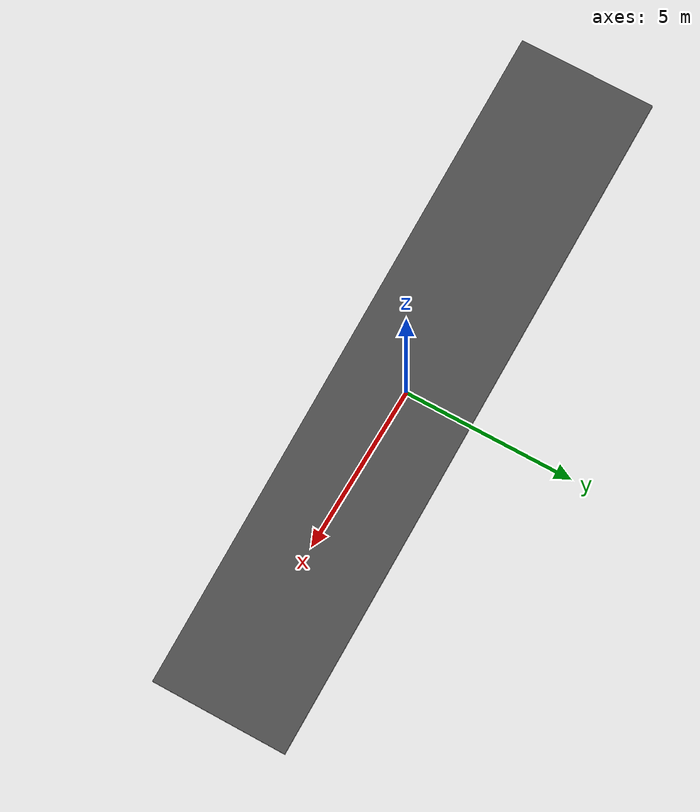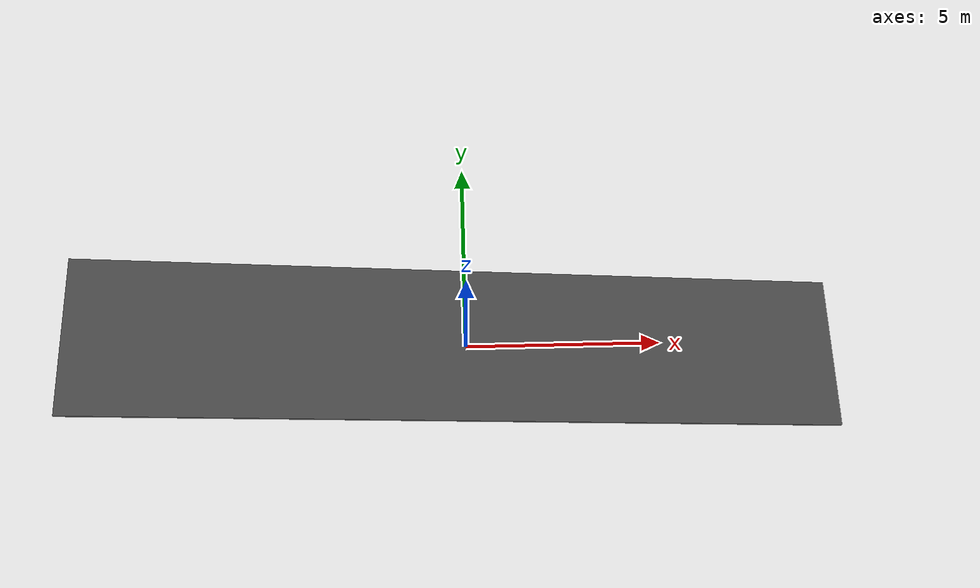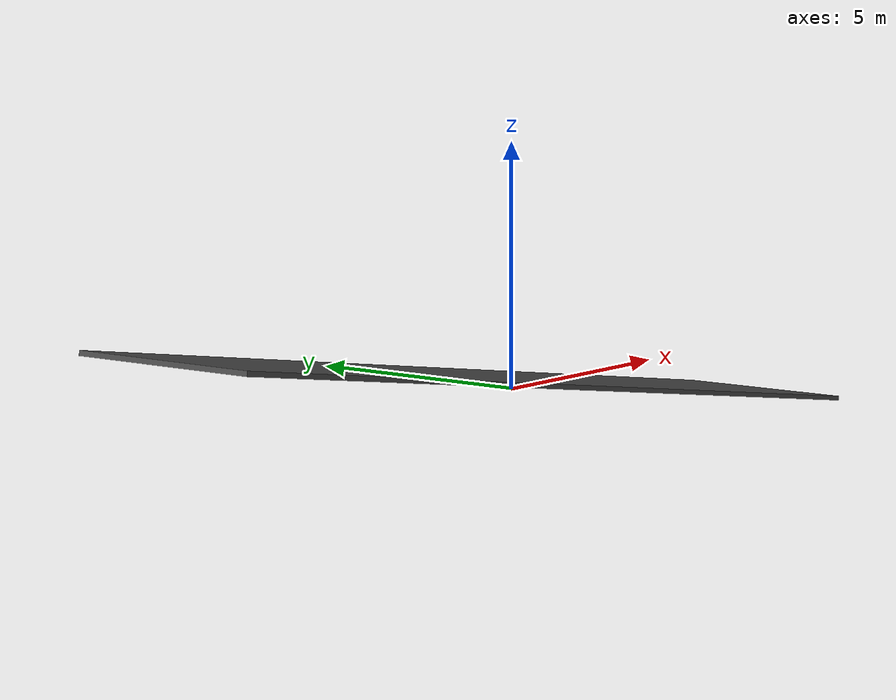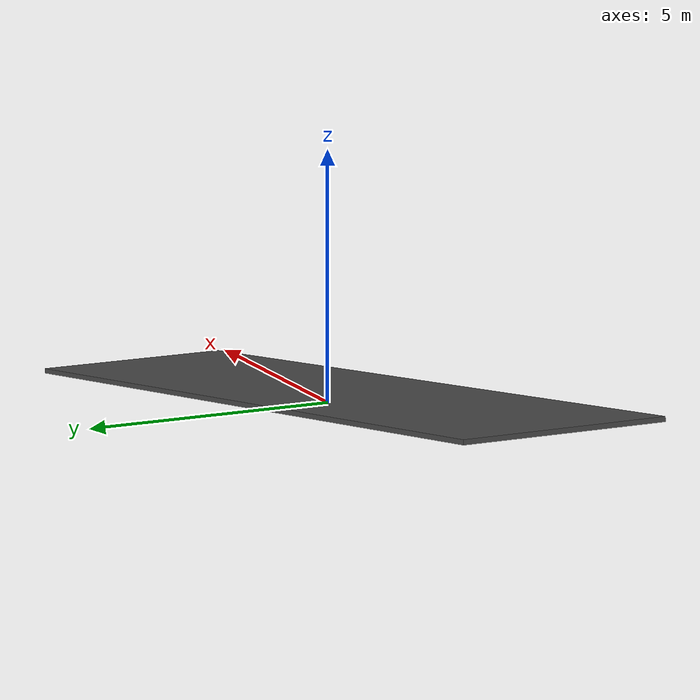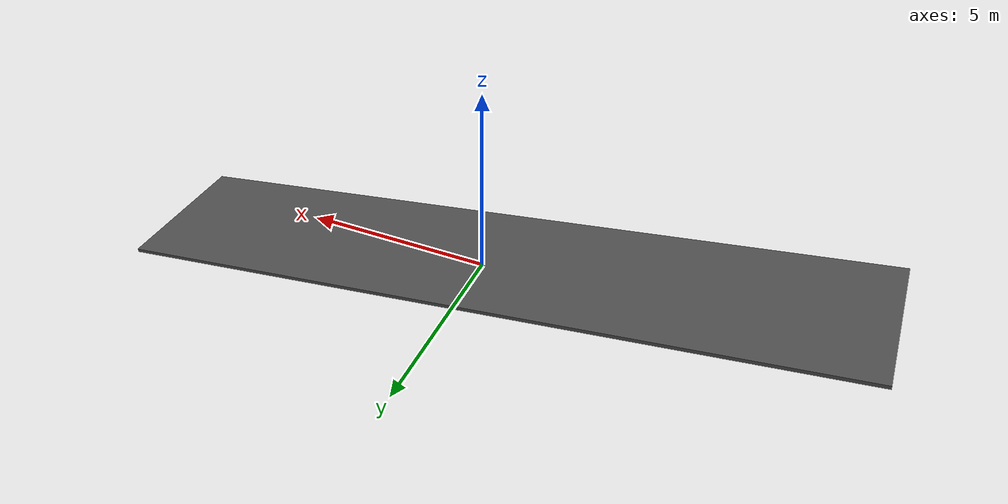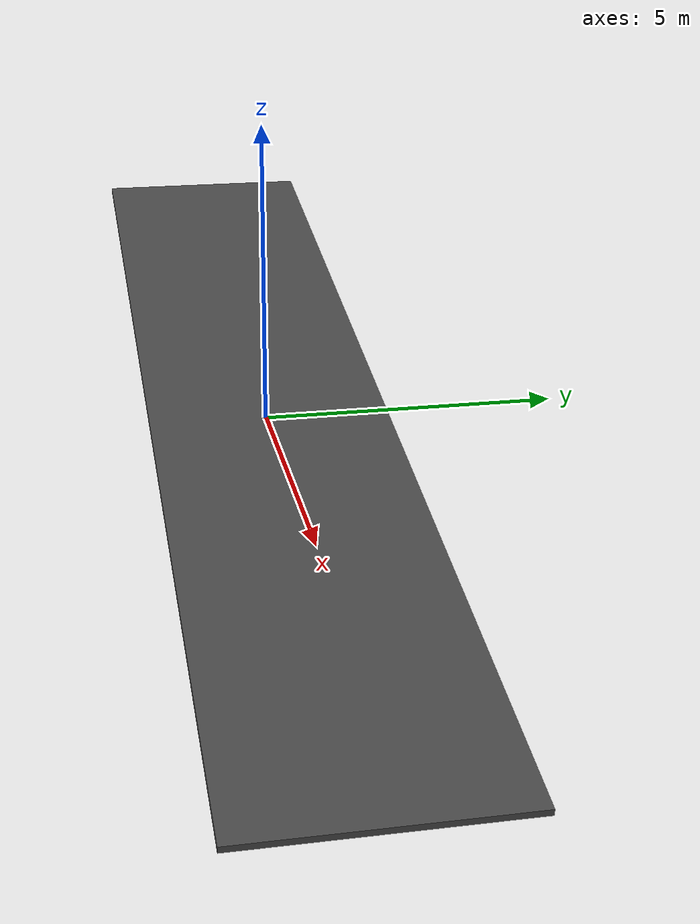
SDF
<?xml version="1.0" ?>
<sdf version="1.4">
  <model name="ramp">
    <static>true</static>
    <pose>0 0 0.2 0 0.15 0</pose>
    <link name="link">
      <collision name="collision">
        <geometry>
          <box>
            <size>20 4 .1</size>
          </box>
        </geometry>
      </collision>
      <visual name="visual">
        <geometry>
          <box>
            <size>20 4 .1</size>
          </box>
        </geometry>
        <material>
          <script>
            <uri>model://asphalt_plane/materials/scripts/asphalt.material</uri>
            <name>vrc/asphalt</name>
          </script>
        </material>
      </visual>
    </link>
  </model>
</sdf>
